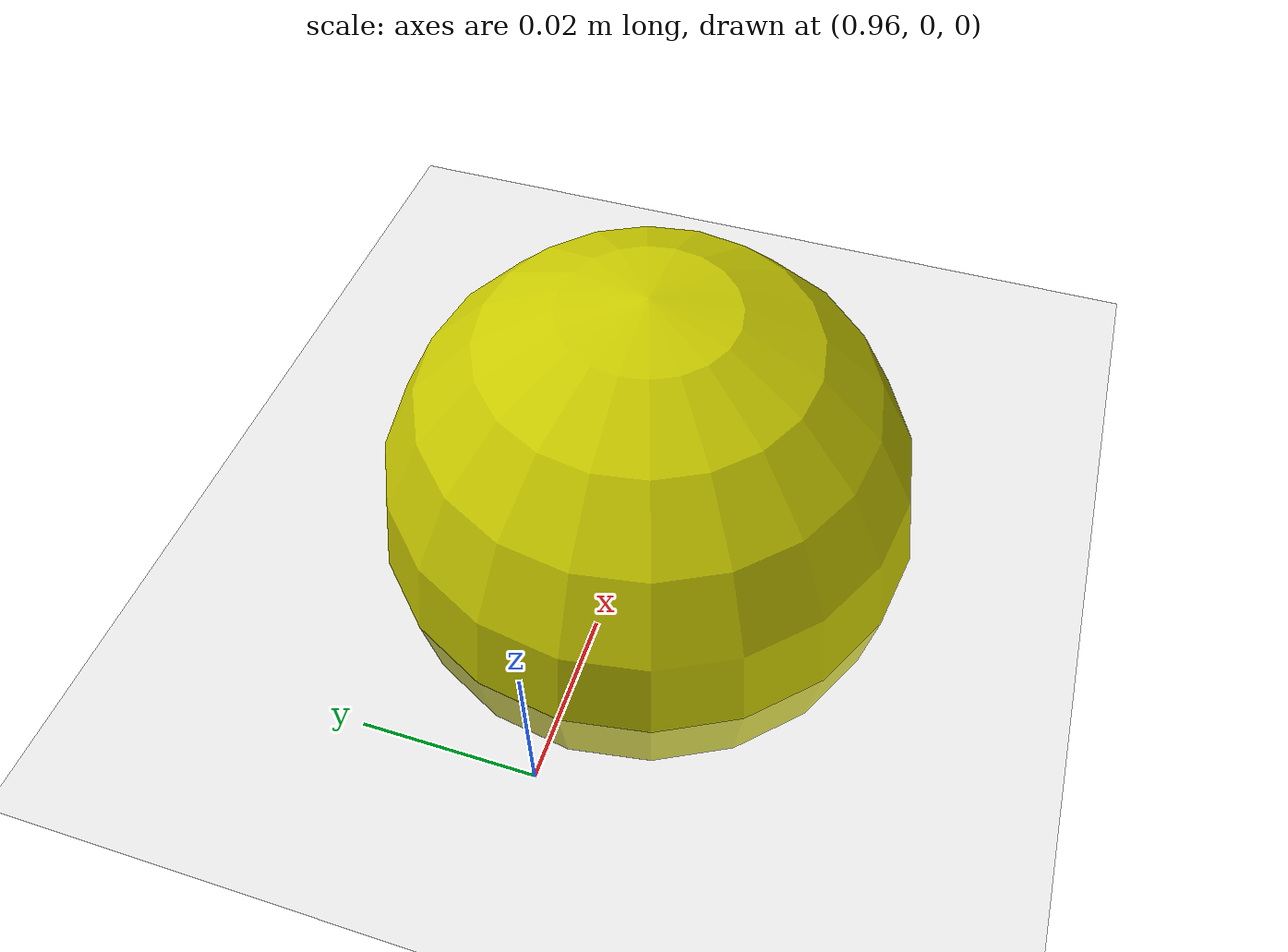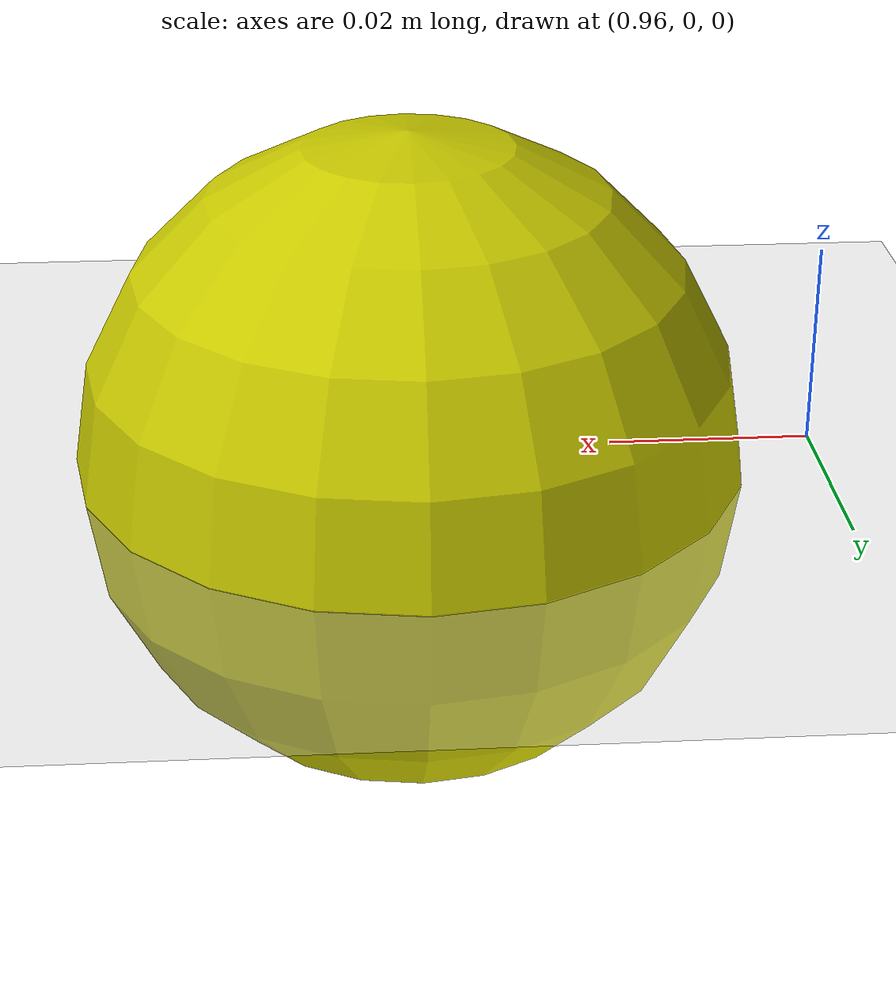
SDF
<sdf version="1.6">
  <world name="empty">
    <physics name="1ms" type="ignored">
      <max_step_size>0.001</max_step_size>
      <real_time_factor>1.0</real_time_factor>
    </physics>
    <plugin
      filename="gz-sim-physics-system"
      name="gz::sim::systems::Physics">
    </plugin>
    <plugin
      filename="gz-sim-user-commands-system"
      name="gz::sim::systems::UserCommands">
    </plugin>
    <plugin
      filename="gz-sim-scene-broadcaster-system"
      name="gz::sim::systems::SceneBroadcaster">
    </plugin>
    <plugin
      filename="gz-sim-sensors-system"
      name="gz::sim::systems::Sensors">
      <render_engine>ogre2</render_engine>
    </plugin>
    <plugin
      filename="gz-sim-contact-system"
      name="gz::sim::systems::Contact">
    </plugin>

    <light type="directional" name="sun">
      <cast_shadows>true</cast_shadows>
      <pose>0 0 10 0 0 0</pose>
      <diffuse>0.8 0.8 0.8 1</diffuse>
      <specular>0.2 0.2 0.2 1</specular>
      <attenuation>
        <range>1000</range>
        <constant>0.9</constant>
        <linear>0.01</linear>
        <quadratic>0.001</quadratic>
      </attenuation>
      <direction>-0.5 0.1 -0.9</direction>
    </light>

    <model name="ground_plane">
      <static>true</static>
      <link name="link">
        <collision name="collision">
          <geometry>
            <plane>
              <normal>0 0 1</normal>
              <size>100 100</size>
            </plane>
          </geometry>
        </collision>
        <visual name="visual">
          <geometry>
            <plane>
              <normal>0 0 1</normal>
              <size>100 100</size>
            </plane>
          </geometry>
          <material>
            <ambient>0.8 0.8 0.8 1</ambient>
            <diffuse>0.8 0.8 0.8 1</diffuse>
            <specular>0.8 0.8 0.8 1</specular>
          </material>
        </visual>
      </link>
    </model>

    <!-- Tennis Ball Model -->
    <model name="tennis_ball">
      <pose>1 0 0 0 0 0</pose> <!-- Placed at (1, 0, 0) -->
      <static>false</static>
      <link name="link">
        <collision name="collision">
          <geometry>
            <sphere>
              <radius>0.033</radius> <!-- Tennis ball radius is approximately 33 mm -->
            </sphere>
          </geometry>
        </collision>
        <visual name="visual">
          <geometry>
            <sphere>
              <radius>0.033</radius>
            </sphere>
          </geometry>
          <material>
            <ambient>0.8 0.8 0.0 1.0</ambient> <!-- Yellow-ish color for the tennis ball -->
            <diffuse>0.8 0.8 0.0 1.0</diffuse>
            <specular>0.5 0.5 0.5 1.0</specular>
          </material>
        </visual>
      </link>
    </model>

  </world>
</sdf>
